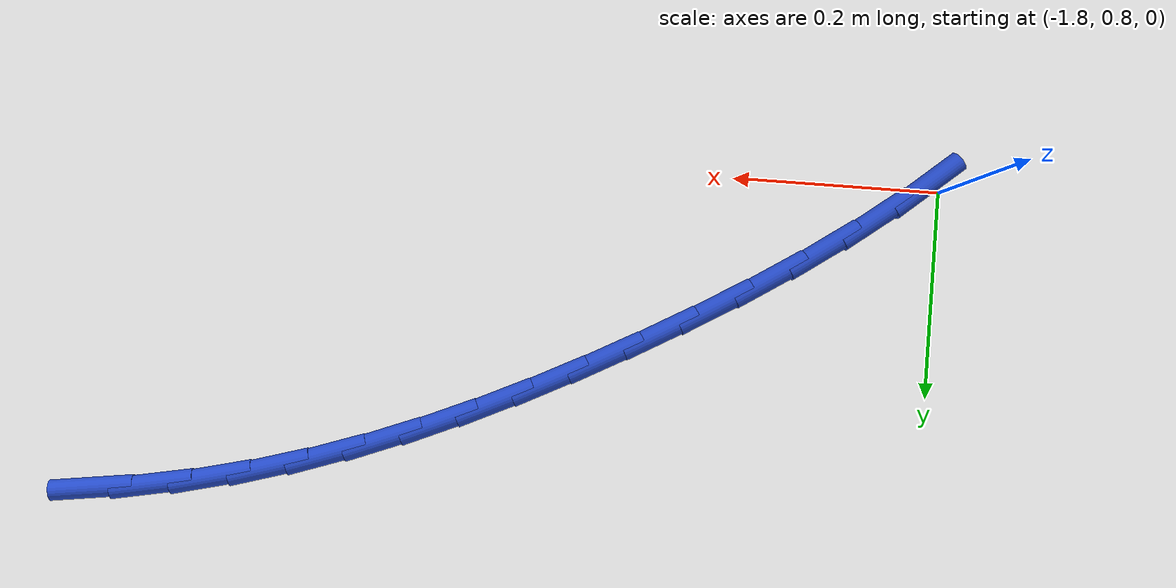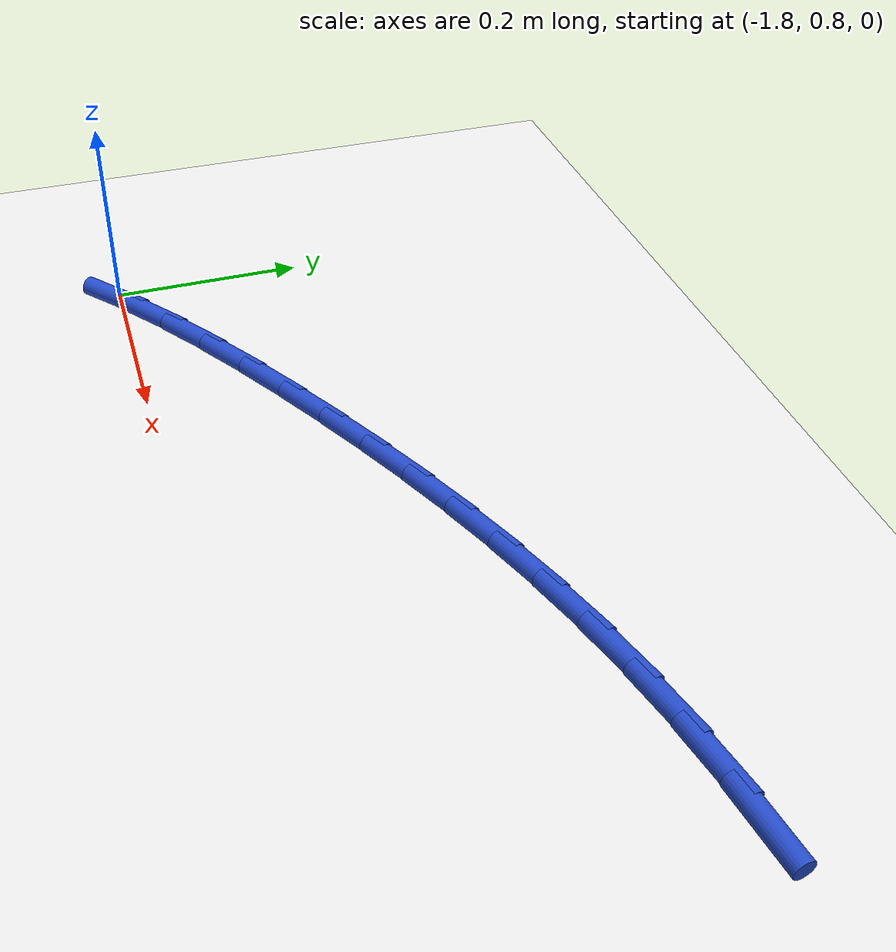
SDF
<sdf version="1.6">
 <world name="default">
  <model name="ground_plane">
   <static>1</static>
   <link name="link">
    <collision name="collision">
     <geometry><plane><normal>0 0 1</normal><size>100 100</size></plane></geometry>
     <surface><friction><ode><mu>100</mu><mu2>50</mu2></ode></friction></surface>
    </collision>
    <visual name="visual">
     <cast_shadows>0</cast_shadows>
     <geometry><plane><normal>0 0 1</normal><size>100 100</size></plane></geometry>
     <material>
      <script><uri>file://media/materials/scripts/gazebo.material</uri><name>Gazebo/WhiteGlow</name></script>
     </material>
    </visual>
   </link>
  </model>
  <model name="line">
   <link name="link_30">
    <pose>-1.0075494586323814 1.1417228693926507 0.01 0 1.57 0.13723455622685296</pose>
    <collision name="collision">
     <geometry><cylinder><radius>0.01</radius><length>0.08</length></cylinder></geometry>
    </collision>
    <visual name="visual">
     <material>
      <script><name>Gazebo/Blue</name><uri>file://media/materials/scripts/gazebo.material</uri></script>
     </material>
     <geometry><cylinder><radius>0.01</radius><length>0.08</length></cylinder></geometry>
    </visual>
   </link>
   <link name="link_31">
    <pose>-1.0643876253432047 1.1338733694352223 0.01 0 1.57 0.18991171758649097</pose>
    <collision name="collision">
     <geometry><cylinder><radius>0.01</radius><length>0.08</length></cylinder></geometry>
    </collision>
    <visual name="visual">
     <material>
      <script><name>Gazebo/Blue</name><uri>file://media/materials/scripts/gazebo.material</uri></script>
     </material>
     <geometry><cylinder><radius>0.01</radius><length>0.08</length></cylinder></geometry>
    </visual>
   </link>
   <link name="link_32">
    <pose>-1.1200520261433888 1.123173096777518 0.01 0 1.57 0.24031407009885458</pose>
    <collision name="collision">
     <geometry><cylinder><radius>0.01</radius><length>0.08</length></cylinder></geometry>
    </collision>
    <visual name="visual">
     <material>
      <script><name>Gazebo/Blue</name><uri>file://media/materials/scripts/gazebo.material</uri></script>
     </material>
     <geometry><cylinder><radius>0.01</radius><length>0.08</length></cylinder></geometry>
    </visual>
   </link>
   <link name="link_33">
    <pose>-1.1746673572780097 1.1097896313524995 0.01 0 1.57 0.2878620673170807</pose>
    <collision name="collision">
     <geometry><cylinder><radius>0.01</radius><length>0.08</length></cylinder></geometry>
    </collision>
    <visual name="visual">
     <material>
      <script><name>Gazebo/Blue</name><uri>file://media/materials/scripts/gazebo.material</uri></script>
     </material>
     <geometry><cylinder><radius>0.01</radius><length>0.08</length></cylinder></geometry>
    </visual>
   </link>
   <link name="link_34">
    <pose>-1.228366492083997 1.0938900719278586 0.01 0 1.57 0.33208856807565656</pose>
    <collision name="collision">
     <geometry><cylinder><radius>0.01</radius><length>0.08</length></cylinder></geometry>
    </collision>
    <visual name="visual">
     <material>
      <script><name>Gazebo/Blue</name><uri>file://media/materials/scripts/gazebo.material</uri></script>
     </material>
     <geometry><cylinder><radius>0.01</radius><length>0.08</length></cylinder></geometry>
    </visual>
   </link>
   <link name="link_35">
    <pose>-1.2812823038982797 1.0756415172712852 0.01 0 1.57 0.3726357076616756</pose>
    <collision name="collision">
     <geometry><cylinder><radius>0.01</radius><length>0.08</length></cylinder></geometry>
    </collision>
    <visual name="visual">
     <material>
      <script><name>Gazebo/Blue</name><uri>file://media/materials/scripts/gazebo.material</uri></script>
     </material>
     <geometry><cylinder><radius>0.01</radius><length>0.08</length></cylinder></geometry>
    </visual>
   </link>
   <link name="link_36">
    <pose>-1.333547666057787 1.0552110661504706 0.01 0 1.57 0.4092528246291636</pose>
    <collision name="collision">
     <geometry><cylinder><radius>0.01</radius><length>0.08</length></cylinder></geometry>
    </collision>
    <visual name="visual">
     <material>
      <script><name>Gazebo/Blue</name><uri>file://media/materials/scripts/gazebo.material</uri></script>
     </material>
     <geometry><cylinder><radius>0.01</radius><length>0.08</length></cylinder></geometry>
    </visual>
   </link>
   <link name="link_37">
    <pose>-1.385295451899448 1.0327658173331054 0.01 0 1.57 0.44178676557568924</pose>
    <collision name="collision">
     <geometry><cylinder><radius>0.01</radius><length>0.08</length></cylinder></geometry>
    </collision>
    <visual name="visual">
     <material>
      <script><name>Gazebo/Blue</name><uri>file://media/materials/scripts/gazebo.material</uri></script>
     </material>
     <geometry><cylinder><radius>0.01</radius><length>0.08</length></cylinder></geometry>
    </visual>
   </link>
   <link name="link_38">
    <pose>-1.4366585347601923 1.0084728695868808 0.01 0 1.57 0.47016755033992763</pose>
    <collision name="collision">
     <geometry><cylinder><radius>0.01</radius><length>0.08</length></cylinder></geometry>
    </collision>
    <visual name="visual">
     <material>
      <script><name>Gazebo/Blue</name><uri>file://media/materials/scripts/gazebo.material</uri></script>
     </material>
     <geometry><cylinder><radius>0.01</radius><length>0.08</length></cylinder></geometry>
    </visual>
   </link>
   <link name="link_39">
    <pose>-1.4877697879769487 0.9824993216794871 0.01 0 1.57 0.49439215620809024</pose>
    <collision name="collision">
     <geometry><cylinder><radius>0.01</radius><length>0.08</length></cylinder></geometry>
    </collision>
    <visual name="visual">
     <material>
      <script><name>Gazebo/Blue</name><uri>file://media/materials/scripts/gazebo.material</uri></script>
     </material>
     <geometry><cylinder><radius>0.01</radius><length>0.08</length></cylinder></geometry>
    </visual>
   </link>
   <link name="link_40">
    <pose>-1.5387620848866468 0.9550122723786154 0.01 0 1.57 0.5158884030075856</pose>
    <collision name="collision">
     <geometry><cylinder><radius>0.01</radius><length>0.08</length></cylinder></geometry>
    </collision>
    <visual name="visual">
     <material>
      <script><name>Gazebo/Blue</name><uri>file://media/materials/scripts/gazebo.material</uri></script>
     </material>
     <geometry><cylinder><radius>0.01</radius><length>0.08</length></cylinder></geometry>
    </visual>
   </link>
   <link name="link_41">
    <pose>-1.5896756049453817 0.9261384447215228 0.01 0 1.57 0.5410396455282362</pose>
    <collision name="collision">
     <geometry><cylinder><radius>0.01</radius><length>0.08</length></cylinder></geometry>
    </collision>
    <visual name="visual">
     <material>
      <script><name>Gazebo/Blue</name><uri>file://media/materials/scripts/gazebo.material</uri></script>
     </material>
     <geometry><cylinder><radius>0.01</radius><length>0.08</length></cylinder></geometry>
    </visual>
   </link>
   <link name="link_42">
    <pose>-1.6401317859373004 0.8958221656615398 0.01 0 1.57 0.571953471398883</pose>
    <collision name="collision">
     <geometry><cylinder><radius>0.01</radius><length>0.08</length></cylinder></geometry>
    </collision>
    <visual name="visual">
     <material>
      <script><name>Gazebo/Blue</name><uri>file://media/materials/scripts/gazebo.material</uri></script>
     </material>
     <geometry><cylinder><radius>0.01</radius><length>0.08</length></cylinder></geometry>
    </visual>
   </link>
   <link name="link_43">
    <pose>-1.6896338768760875 0.863956281321832 0.01 0 1.57 0.6091427986652737</pose>
    <collision name="collision">
     <geometry><cylinder><radius>0.01</radius><length>0.08</length></cylinder></geometry>
    </collision>
    <visual name="visual">
     <material>
      <script><name>Gazebo/Blue</name><uri>file://media/materials/scripts/gazebo.material</uri></script>
     </material>
     <geometry><cylinder><radius>0.01</radius><length>0.08</length></cylinder></geometry>
    </visual>
   </link>
   <link name="link_44">
    <pose>-1.7376851197971415 0.8304336347859541 0.01 0 1.57 0.6532686360902117</pose>
    <collision name="collision">
     <geometry><cylinder><radius>0.01</radius><length>0.08</length></cylinder></geometry>
    </collision>
    <visual name="visual">
     <material>
      <script><name>Gazebo/Blue</name><uri>file://media/materials/scripts/gazebo.material</uri></script>
     </material>
     <geometry><cylinder><radius>0.01</radius><length>0.08</length></cylinder></geometry>
    </visual>
   </link>
   <link name="link_45">
    <pose>-1.7837887567358641 0.7951470691374612 0.01 0 1.57 0.705122155356683</pose>
    <collision name="collision">
     <geometry><cylinder><radius>0.01</radius><length>0.08</length></cylinder></geometry>
    </collision>
    <visual name="visual">
     <material>
      <script><name>Gazebo/Blue</name><uri>file://media/materials/scripts/gazebo.material</uri></script>
     </material>
     <geometry><cylinder><radius>0.01</radius><length>0.08</length></cylinder></geometry>
    </visual>
   </link>
  </model>
 </world>
</sdf>
